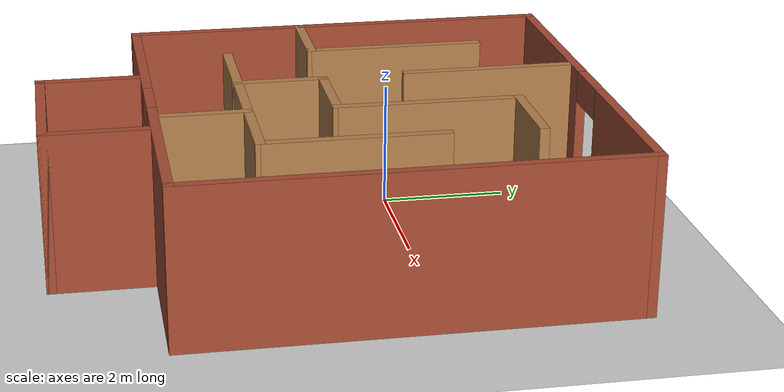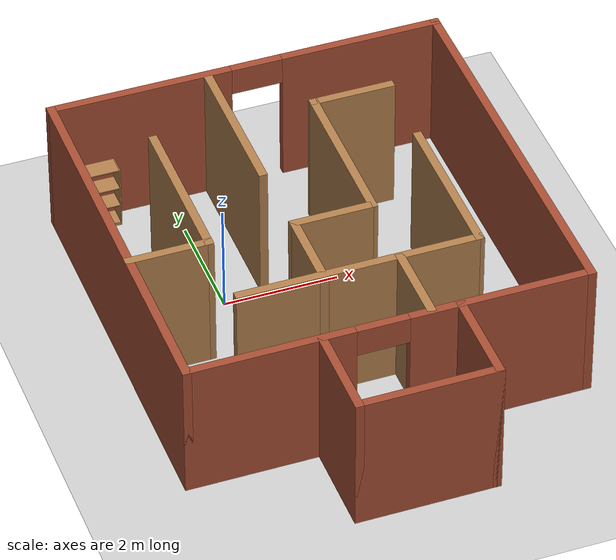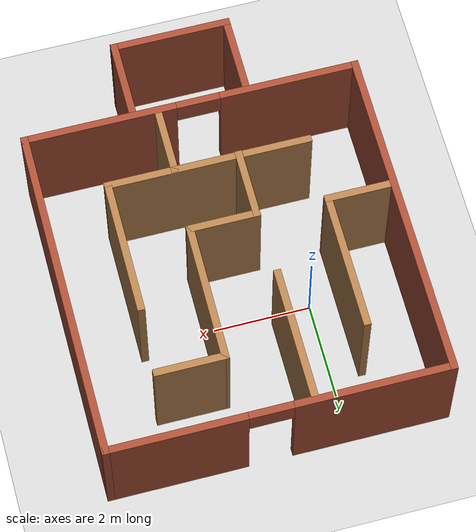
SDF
<sdf version="1.7">
 <world name="default">
  <light name="sun" type="directional">
   <pose>0 0 10 0 -0 0</pose>
   <diffuse>0.8 0.8 0.8 1</diffuse>
   <specular>0.2 0.2 0.2 1</specular>
   <attenuation>
    <range>1000</range>
    <constant>0.9</constant>
    <linear>0.01</linear>
    <quadratic>0.001</quadratic>
   </attenuation>
   <direction>-0.5 0.1 -0.9</direction>
   <spot><inner_angle>0</inner_angle><outer_angle>0</outer_angle><falloff>0</falloff></spot>
  </light>
  <model name="ground_plane">
   <static>1</static>
   <link name="link">
    <collision name="collision">
     <geometry><plane><normal>0 0 1</normal><size>100 100</size></plane></geometry>
     <surface><friction><ode><mu>100</mu><mu2>50</mu2></ode></friction></surface>
    </collision>
    <visual name="visual">
     <cast_shadows>0</cast_shadows>
     <geometry><plane><normal>0 0 1</normal><size>100 100</size></plane></geometry>
     <material>
      <script><uri>file://media/materials/scripts/gazebo.material</uri><name>Gazebo/Grey</name></script>
     </material>
    </visual>
   </link>
  </model>
  <gravity>0 0 -9.8</gravity>
  <magnetic_field>6e-06 2.3e-05 -4.2e-05</magnetic_field>
  <atmosphere type="adiabatic"/>
  <physics type="ode">
   <max_step_size>0.001</max_step_size>
   <real_time_factor>1</real_time_factor>
   <real_time_update_rate>1000</real_time_update_rate>
  </physics>
  <scene><ambient>0.4 0.4 0.4 1</ambient><background>0.7 0.7 0.7 1</background><shadows>1</shadows></scene>
  <audio><device>default</device></audio>
  <spherical_coordinates>
   <surface_model>EARTH_WGS84</surface_model>
   <latitude_deg>0</latitude_deg>
   <longitude_deg>0</longitude_deg>
   <elevation>0</elevation>
   <heading_deg>0</heading_deg>
  </spherical_coordinates>
  <model name="maze">
   <pose>1.44447 -1.30564 0 0 -0 0</pose>
   <link name="Wall_10">
    <collision name="Wall_10_Collision">
     <geometry><box><size>1.5 0.15 2.5</size></box></geometry>
     <pose>0 0 1.25 0 -0 0</pose>
    </collision>
    <visual name="Wall_10_Visual">
     <pose>0 0 1.25 0 -0 0</pose>
     <geometry><box><size>1.5 0.15 2.5</size></box></geometry>
     <material>
      <script><uri>file://media/materials/scripts/gazebo.material</uri><name>Gazebo/Wood</name></script>
      <ambient>1 1 1 1</ambient>
     </material>
     <meta><layer>0</layer></meta>
    </visual>
    <pose>-2.75 0.179141 0 0 -0 0</pose>
   </link>
   <link name="Wall_11">
    <collision name="Wall_11_Collision">
     <geometry><box><size>2.90285 0.15 2.5</size></box></geometry>
     <pose>0 0 1.25 0 -0 0</pose>
    </collision>
    <visual name="Wall_11_Visual">
     <pose>0 0 1.25 0 -0 0</pose>
     <geometry><box><size>2.90285 0.15 2.5</size></box></geometry>
     <material>
      <script><uri>file://media/materials/scripts/gazebo.material</uri><name>Gazebo/Wood</name></script>
      <ambient>1 1 1 1</ambient>
     </material>
     <meta><layer>0</layer></meta>
    </visual>
    <pose>-2.07321 1.55553 0 0 -0 1.5695</pose>
   </link>
   <link name="Wall_13">
    <collision name="Wall_13_Collision">
     <geometry><box><size>2.75 0.15 2.5</size></box></geometry>
     <pose>0 0 1.25 0 -0 0</pose>
    </collision>
    <visual name="Wall_13_Visual">
     <pose>0 0 1.25 0 -0 0</pose>
     <geometry><box><size>2.75 0.15 2.5</size></box></geometry>
     <material>
      <script><uri>file://media/materials/scripts/gazebo.material</uri><name>Gazebo/Wood</name></script>
      <ambient>1 1 1 1</ambient>
     </material>
     <meta><layer>0</layer></meta>
    </visual>
    <pose>-0.687425 2.8023 0 0 -0 1.5708</pose>
   </link>
   <link name="Wall_19">
    <collision name="Wall_19_Collision">
     <geometry><box><size>4.25 0.15 2.5</size></box></geometry>
     <pose>0 0 1.25 0 -0 0</pose>
    </collision>
    <visual name="Wall_19_Visual">
     <pose>0 0 1.25 0 -0 0</pose>
     <geometry><box><size>4.25 0.15 2.5</size></box></geometry>
     <material>
      <script><uri>file://media/materials/scripts/gazebo.material</uri><name>Gazebo/Wood</name></script>
      <ambient>1 1 1 1</ambient>
     </material>
     <meta><layer>0</layer></meta>
    </visual>
    <pose>0.008996 -1.20486 0 0 -0 0</pose>
   </link>
   <link name="Wall_20">
    <collision name="Wall_20_Collision">
     <geometry><box><size>2.87238 0.15 2.5</size></box></geometry>
     <pose>0 0 1.25 0 -0 0</pose>
    </collision>
    <visual name="Wall_20_Visual">
     <pose>0 0 1.25 0 -0 0</pose>
     <geometry><box><size>2.87238 0.15 2.5</size></box></geometry>
     <material>
      <script><uri>file://media/materials/scripts/gazebo.material</uri><name>Gazebo/Wood</name></script>
      <ambient>1 1 1 1</ambient>
     </material>
     <meta><layer>0</layer></meta>
    </visual>
    <pose>2.06218 0.156328 0 0 -0 1.56846</pose>
   </link>
   <link name="Wall_22">
    <collision name="Wall_22_Collision">
     <geometry><box><size>1.5 0.15 2.5</size></box></geometry>
     <pose>0 0 1.25 0 -0 0</pose>
    </collision>
    <visual name="Wall_22_Visual">
     <pose>0 0 1.25 0 -0 0</pose>
     <geometry><box><size>1.5 0.15 2.5</size></box></geometry>
     <material>
      <script><uri>file://media/materials/scripts/gazebo.material</uri><name>Gazebo/Wood</name></script>
      <ambient>1 1 1 1</ambient>
     </material>
     <meta><layer>0</layer></meta>
    </visual>
    <pose>1.42078 2.93193 0 0 -0 3.14159</pose>
   </link>
   <link name="Wall_27">
    <collision name="Wall_27_Collision">
     <geometry><box><size>2.94847 0.15 2.5</size></box></geometry>
     <pose>0 0 1.25 0 -0 0</pose>
    </collision>
    <visual name="Wall_27_Visual">
     <pose>0 0 1.25 0 -0 0</pose>
     <geometry><box><size>2.94847 0.15 2.5</size></box></geometry>
     <material>
      <script><uri>file://media/materials/scripts/gazebo.material</uri><name>Gazebo/Wood</name></script>
      <ambient>1 1 1 1</ambient>
     </material>
     <meta><layer>0</layer></meta>
    </visual>
    <pose>0.736382 1.53272 0 0 -0 1.56408</pose>
   </link>
   <link name="Wall_29">
    <collision name="Wall_29_Collision">
     <geometry><box><size>1.5 0.15 2.5</size></box></geometry>
     <pose>0 0 1.25 0 -0 0</pose>
    </collision>
    <visual name="Wall_29_Visual">
     <pose>0 0 1.25 0 -0 0</pose>
     <geometry><box><size>1.5 0.15 2.5</size></box></geometry>
     <material>
      <script><uri>file://media/materials/scripts/gazebo.material</uri><name>Gazebo/Wood</name></script>
      <ambient>1 1 1 1</ambient>
     </material>
     <meta><layer>0</layer></meta>
    </visual>
    <pose>0.051989 0.133515 0 0 -0 3.14159</pose>
   </link>
   <link name="Wall_3">
    <collision name="Wall_3_Collision">
     <geometry><box><size>7 0.15 2.5</size></box></geometry>
     <pose>0 0 1.25 0 -0 0</pose>
    </collision>
    <visual name="Wall_3_Visual">
     <pose>0 0 1.25 0 -0 0</pose>
     <geometry><box><size>7 0.15 2.5</size></box></geometry>
     <material>
      <script><uri>file://media/materials/scripts/gazebo.material</uri><name>Gazebo/Bricks</name></script>
      <ambient>1 1 1 1</ambient>
     </material>
     <meta><layer>0</layer></meta>
    </visual>
    <pose>-3.425 0.814877 0 0 -0 -1.5708</pose>
   </link>
   <link name="Wall_31">
    <collision name="Wall_31_Collision">
     <geometry><box><size>1.5 0.15 2.5</size></box></geometry>
     <pose>0 0 1.25 0 -0 0</pose>
    </collision>
    <visual name="Wall_31_Visual">
     <pose>0 0 1.25 0 -0 0</pose>
     <geometry><box><size>1.5 0.15 2.5</size></box></geometry>
     <material>
      <script><uri>file://media/materials/scripts/gazebo.material</uri><name>Gazebo/Wood</name></script>
      <ambient>1 1 1 1</ambient>
     </material>
     <meta><layer>0</layer></meta>
    </visual>
    <pose>-0.623011 -0.541485 0 0 -0 -1.5708</pose>
   </link>
   <link name="Wall_37">
    <collision name="Wall_37_Collision">
     <geometry><box><size>1.5 0.15 2.5</size></box></geometry>
     <pose>0 0 1.25 0 -0 0</pose>
    </collision>
    <visual name="Wall_37_Visual">
     <pose>0 0 1.25 0 -0 0</pose>
     <geometry><box><size>1.5 0.15 2.5</size></box></geometry>
     <material>
      <script><uri>file://media/materials/scripts/gazebo.material</uri><name>Gazebo/Wood</name></script>
      <ambient>1 1 1 1</ambient>
     </material>
     <meta><layer>0</layer></meta>
    </visual>
    <pose>0.696571 -1.91027 0 0 -0 -1.5708</pose>
   </link>
   <link name="Wall_4">
    <pose>-0 -2.61012 0 0 -0 0</pose>
    <visual name="Wall_4_Visual_0">
     <pose>-2.04495 0 1.25 0 -0 0</pose>
     <geometry><box><size>2.91009 0.15 2.5</size></box></geometry>
     <material>
      <script><uri>file://media/materials/scripts/gazebo.material</uri><name>Gazebo/Bricks</name></script>
      <ambient>1 1 1 1</ambient>
     </material>
     <meta><layer>0</layer></meta>
    </visual>
    <collision name="Wall_4_Collision_0">
     <geometry><box><size>2.91009 0.15 2.5</size></box></geometry>
     <pose>-2.04495 0 1.25 0 -0 0</pose>
    </collision>
    <visual name="Wall_4_Visual_1">
     <pose>1.90505 0 1.25 0 -0 0</pose>
     <geometry><box><size>3.18991 0.15 2.5</size></box></geometry>
     <material>
      <script><uri>file://media/materials/scripts/gazebo.material</uri><name>Gazebo/Bricks</name></script>
      <ambient>1 1 1 1</ambient>
     </material>
     <meta><layer>0</layer></meta>
    </visual>
    <collision name="Wall_4_Collision_1">
     <geometry><box><size>3.18991 0.15 2.5</size></box></geometry>
     <pose>1.90505 0 1.25 0 -0 0</pose>
    </collision>
    <visual name="Wall_4_Visual_2">
     <pose>-0.13991 0 2.25 0 -0 0</pose>
     <geometry><box><size>0.9 0.15 0.5</size></box></geometry>
     <material>
      <script><uri>file://media/materials/scripts/gazebo.material</uri><name>Gazebo/Bricks</name></script>
      <ambient>1 1 1 1</ambient>
     </material>
     <meta><layer>0</layer></meta>
    </visual>
    <collision name="Wall_4_Collision_2">
     <geometry><box><size>0.9 0.15 0.5</size></box></geometry>
     <pose>-0.13991 0 2.25 0 -0 0</pose>
    </collision>
   </link>
   <link name="Wall_41">
    <collision name="Wall_41_Collision">
     <geometry><box><size>1.75 0.15 2.5</size></box></geometry>
     <pose>0 0 1.25 0 -0 0</pose>
    </collision>
    <visual name="Wall_41_Visual">
     <pose>0 0 1.25 0 -0 0</pose>
     <geometry><box><size>1.75 0.15 2.5</size></box></geometry>
     <material>
      <script><uri>file://media/materials/scripts/gazebo.material</uri><name>Gazebo/Bricks</name></script>
      <ambient>1 1 1 1</ambient>
     </material>
     <meta><layer>0</layer></meta>
    </visual>
    <pose>-1.15442 -3.43988 0 0 -0 -1.5708</pose>
   </link>
   <link name="Wall_42">
    <collision name="Wall_42_Collision">
     <geometry><box><size>2.5 0.15 2.5</size></box></geometry>
     <pose>0 0 1.25 0 -0 0</pose>
    </collision>
    <visual name="Wall_42_Visual">
     <pose>0 0 1.25 0 -0 0</pose>
     <geometry><box><size>2.5 0.15 2.5</size></box></geometry>
     <material>
      <script><uri>file://media/materials/scripts/gazebo.material</uri><name>Gazebo/Bricks</name></script>
      <ambient>1 1 1 1</ambient>
     </material>
     <meta><layer>0</layer></meta>
    </visual>
    <pose>0.020583 -4.23988 0 0 -0 0</pose>
   </link>
   <link name="Wall_43">
    <collision name="Wall_43_Collision">
     <geometry><box><size>1.75 0.15 2.5</size></box></geometry>
     <pose>0 0 1.25 0 -0 0</pose>
    </collision>
    <visual name="Wall_43_Visual">
     <pose>0 0 1.25 0 -0 0</pose>
     <geometry><box><size>1.75 0.15 2.5</size></box></geometry>
     <material>
      <script><uri>file://media/materials/scripts/gazebo.material</uri><name>Gazebo/Bricks</name></script>
      <ambient>1 1 1 1</ambient>
     </material>
     <meta><layer>0</layer></meta>
    </visual>
    <pose>1.19558 -3.43988 0 0 -0 1.5708</pose>
   </link>
   <link name="Wall_5">
    <collision name="Wall_5_Collision">
     <geometry><box><size>7 0.15 2.5</size></box></geometry>
     <pose>0 0 1.25 0 -0 0</pose>
    </collision>
    <visual name="Wall_5_Visual">
     <pose>0 0 1.25 0 -0 0</pose>
     <geometry><box><size>7 0.15 2.5</size></box></geometry>
     <material>
      <script><uri>file://media/materials/scripts/gazebo.material</uri><name>Gazebo/Bricks</name></script>
      <ambient>1 1 1 1</ambient>
     </material>
     <meta><layer>0</layer></meta>
    </visual>
    <pose>3.425 0.814877 0 0 -0 1.5708</pose>
   </link>
   <link name="Wall_6">
    <pose>-0 4.23988 0 0 -0 3.14159</pose>
    <visual name="Wall_6_Visual_0">
     <pose>-2.06637 0 1.25 0 -0 0</pose>
     <geometry><box><size>2.86726 0.15 2.5</size></box></geometry>
     <material>
      <script><uri>file://media/materials/scripts/gazebo.material</uri><name>Gazebo/Bricks</name></script>
      <ambient>1 1 1 1</ambient>
     </material>
     <meta><layer>0</layer></meta>
    </visual>
    <collision name="Wall_6_Collision_0">
     <geometry><box><size>2.86726 0.15 2.5</size></box></geometry>
     <pose>-2.06637 0 1.25 0 -0 0</pose>
    </collision>
    <visual name="Wall_6_Visual_1">
     <pose>1.88363 0 1.25 0 -0 0</pose>
     <geometry><box><size>3.23274 0.15 2.5</size></box></geometry>
     <material>
      <script><uri>file://media/materials/scripts/gazebo.material</uri><name>Gazebo/Bricks</name></script>
      <ambient>1 1 1 1</ambient>
     </material>
     <meta><layer>0</layer></meta>
    </visual>
    <collision name="Wall_6_Collision_1">
     <geometry><box><size>3.23274 0.15 2.5</size></box></geometry>
     <pose>1.88363 0 1.25 0 -0 0</pose>
    </collision>
    <visual name="Wall_6_Visual_2">
     <pose>-0.182739 0 2.25 0 -0 0</pose>
     <geometry><box><size>0.9 0.15 0.5</size></box></geometry>
     <material>
      <script><uri>file://media/materials/scripts/gazebo.material</uri><name>Gazebo/Bricks</name></script>
      <ambient>1 1 1 1</ambient>
     </material>
     <meta><layer>0</layer></meta>
    </visual>
    <collision name="Wall_6_Collision_2">
     <geometry><box><size>0.9 0.15 0.5</size></box></geometry>
     <pose>-0.182739 0 2.25 0 -0 0</pose>
    </collision>
   </link>
   <static>1</static>
  </model>
  <model name="bookshelf">
   <static>1</static>
   <link name="link">
    <inertial><mass>1</mass></inertial>
    <collision name="back">
     <pose>0 0.005 0.6 0 -0 0</pose>
     <geometry><box><size>0.9 0.01 1.2</size></box></geometry>
    </collision>
    <visual name="visual1">
     <pose>0 0.005 0.6 0 -0 0</pose>
     <geometry><box><size>0.9 0.01 1.2</size></box></geometry>
     <material>
      <script><uri>file://media/materials/scripts/gazebo.material</uri><name>Gazebo/Wood</name></script>
     </material>
    </visual>
    <collision name="left_side">
     <pose>0.45 -0.195 0.6 0 -0 0</pose>
     <geometry><box><size>0.02 0.4 1.2</size></box></geometry>
    </collision>
    <visual name="visual2">
     <pose>0.45 -0.195 0.6 0 -0 0</pose>
     <geometry><box><size>0.02 0.4 1.2</size></box></geometry>
     <material>
      <script><uri>file://media/materials/scripts/gazebo.material</uri><name>Gazebo/Wood</name></script>
     </material>
    </visual>
    <collision name="right_side">
     <pose>-0.45 -0.195 0.6 0 -0 0</pose>
     <geometry><box><size>0.02 0.4 1.2</size></box></geometry>
    </collision>
    <visual name="visual3">
     <pose>-0.45 -0.195 0.6 0 -0 0</pose>
     <geometry><box><size>0.02 0.4 1.2</size></box></geometry>
     <material>
      <script><uri>file://media/materials/scripts/gazebo.material</uri><name>Gazebo/Wood</name></script>
     </material>
    </visual>
    <collision name="bottom">
     <pose>0 -0.195 0.03 0 -0 0</pose>
     <geometry><box><size>0.88 0.4 0.06</size></box></geometry>
    </collision>
    <visual name="visual4">
     <pose>0 -0.195 0.03 0 -0 0</pose>
     <geometry><box><size>0.88 0.4 0.06</size></box></geometry>
     <material>
      <script><uri>file://media/materials/scripts/gazebo.material</uri><name>Gazebo/Wood</name></script>
     </material>
    </visual>
    <collision name="top">
     <pose>0 -0.195 1.19 0 -0 0</pose>
     <geometry><box><size>0.88 0.4 0.02</size></box></geometry>
    </collision>
    <visual name="visual5">
     <pose>0 -0.195 1.19 0 -0 0</pose>
     <geometry><box><size>0.88 0.4 0.02</size></box></geometry>
     <material>
      <script><uri>file://media/materials/scripts/gazebo.material</uri><name>Gazebo/Wood</name></script>
     </material>
    </visual>
    <collision name="low_shelf">
     <pose>0 -0.195 0.43 0 -0 0</pose>
     <geometry><box><size>0.88 0.4 0.02</size></box></geometry>
    </collision>
    <visual name="visual6">
     <pose>0 -0.195 0.43 0 -0 0</pose>
     <geometry><box><size>0.88 0.4 0.02</size></box></geometry>
     <material>
      <script><uri>file://media/materials/scripts/gazebo.material</uri><name>Gazebo/Wood</name></script>
     </material>
    </visual>
    <collision name="high_shelf">
     <pose>0 -0.195 0.8 0 -0 0</pose>
     <geometry><box><size>0.88 0.4 0.02</size></box></geometry>
    </collision>
    <visual name="visual7">
     <pose>0 -0.195 0.8 0 -0 0</pose>
     <geometry><box><size>0.88 0.4 0.02</size></box></geometry>
     <material>
      <script><uri>file://media/materials/scripts/gazebo.material</uri><name>Gazebo/Wood</name></script>
     </material>
    </visual>
   </link>
   <pose>-1.40432 2.92233 0 0 -0 0</pose>
  </model>
 </world>
</sdf>
